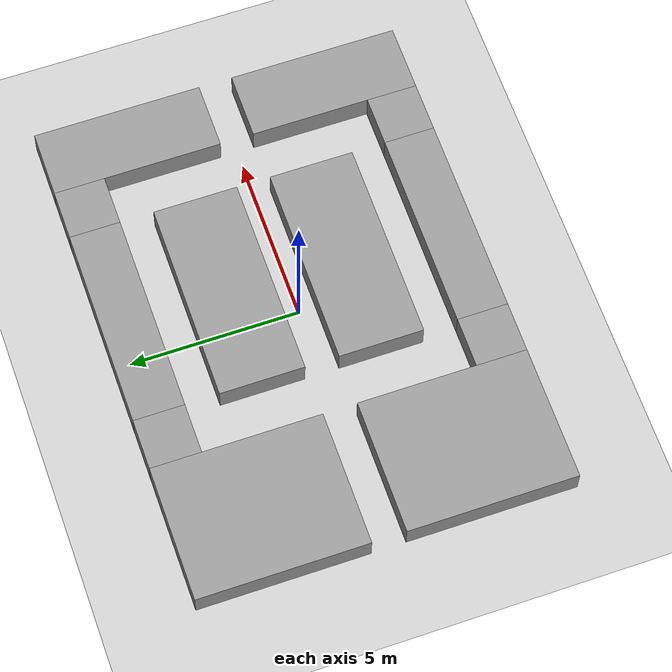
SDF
<sdf version="1.4">
  <world name="default">
    <include>
      <uri>model://sun</uri>
    </include>

    <include>
      <uri>model://ground_plane</uri>
    </include>

    <physics type="ode">
      <real_time_update_rate>1000.0</real_time_update_rate>
      <max_step_size>0.001</max_step_size>
      <real_time_factor>1</real_time_factor>
      <ode>
        <solver>
          <type>quick</type>
          <iters>150</iters>
          <precon_iters>0</precon_iters>
          <sor>1.400000</sor>
          <use_dynamic_moi_rescaling>1</use_dynamic_moi_rescaling>
        </solver>
        <constraints>
          <cfm>0.00001</cfm>
          <erp>0.2</erp>
          <contact_max_correcting_vel>2000.000000</contact_max_correcting_vel>
          <contact_surface_layer>0.01000</contact_surface_layer>
        </constraints>
      </ode>
    </physics>

    <model name="wall_0">
      <static>1</static>
      <pose>-5.500 3.000 0.40 0 0 0</pose>
      <link name="link">
        <collision name="collision">
          <geometry>
            <box>
              <size>4.000 5.000 0.8</size>
            </box>
          </geometry>
        </collision>
        <visual name="visual">
          <geometry>
            <box>
              <size>4.000 5.000 0.8</size>
            </box>
          </geometry>
          <material>
            <script>
              <uri>file://media/materials/scripts/gazebo.material</uri>
              <name>Gazebo/Grey</name>
            </script>
          </material>
        </visual>
      </link>
    </model>

    <model name="wall_1">
      <static>1</static>
      <pose>-5.500 -3.000 0.40 0 0 0</pose>
      <link name="link">
        <collision name="collision">
          <geometry>
            <box>
              <size>4.000 5.000 0.8</size>
            </box>
          </geometry>
        </collision>
        <visual name="visual">
          <geometry>
            <box>
              <size>4.000 5.000 0.8</size>
            </box>
          </geometry>
          <material>
            <script>
              <uri>file://media/materials/scripts/gazebo.material</uri>
              <name>Gazebo/Grey</name>
            </script>
          </material>
        </visual>
      </link>
    </model>

    <model name="wall_2">
      <static>1</static>
      <pose>-2.750 4.750 0.40 0 0 0</pose>
      <link name="link">
        <collision name="collision">
          <geometry>
            <box>
              <size>1.500 1.500 0.8</size>
            </box>
          </geometry>
        </collision>
        <visual name="visual">
          <geometry>
            <box>
              <size>1.500 1.500 0.8</size>
            </box>
          </geometry>
          <material>
            <script>
              <uri>file://media/materials/scripts/gazebo.material</uri>
              <name>Gazebo/Grey</name>
            </script>
          </material>
        </visual>
      </link>
    </model>

    <model name="wall_3">
      <static>1</static>
      <pose>-2.750 -4.750 0.40 0 0 0</pose>
      <link name="link">
        <collision name="collision">
          <geometry>
            <box>
              <size>1.500 1.500 0.8</size>
            </box>
          </geometry>
        </collision>
        <visual name="visual">
          <geometry>
            <box>
              <size>1.500 1.500 0.8</size>
            </box>
          </geometry>
          <material>
            <script>
              <uri>file://media/materials/scripts/gazebo.material</uri>
              <name>Gazebo/Grey</name>
            </script>
          </material>
        </visual>
      </link>
    </model>

    <model name="wall_4">
      <static>1</static>
      <pose>1.000 4.750 0.40 0 0 0</pose>
      <link name="link">
        <collision name="collision">
          <geometry>
            <box>
              <size>6.000 1.500 0.8</size>
            </box>
          </geometry>
        </collision>
        <visual name="visual">
          <geometry>
            <box>
              <size>6.000 1.500 0.8</size>
            </box>
          </geometry>
          <material>
            <script>
              <uri>file://media/materials/scripts/gazebo.material</uri>
              <name>Gazebo/Grey</name>
            </script>
          </material>
        </visual>
      </link>
    </model>

    <model name="wall_5">
      <static>1</static>
      <pose>1.000 1.750 0.40 0 0 0</pose>
      <link name="link">
        <collision name="collision">
          <geometry>
            <box>
              <size>6.000 2.500 0.8</size>
            </box>
          </geometry>
        </collision>
        <visual name="visual">
          <geometry>
            <box>
              <size>6.000 2.500 0.8</size>
            </box>
          </geometry>
          <material>
            <script>
              <uri>file://media/materials/scripts/gazebo.material</uri>
              <name>Gazebo/Grey</name>
            </script>
          </material>
        </visual>
      </link>
    </model>

    <model name="wall_6">
      <static>1</static>
      <pose>1.000 -1.750 0.40 0 0 0</pose>
      <link name="link">
        <collision name="collision">
          <geometry>
            <box>
              <size>6.000 2.500 0.8</size>
            </box>
          </geometry>
        </collision>
        <visual name="visual">
          <geometry>
            <box>
              <size>6.000 2.500 0.8</size>
            </box>
          </geometry>
          <material>
            <script>
              <uri>file://media/materials/scripts/gazebo.material</uri>
              <name>Gazebo/Grey</name>
            </script>
          </material>
        </visual>
      </link>
    </model>

    <model name="wall_7">
      <static>1</static>
      <pose>1.000 -4.750 0.40 0 0 0</pose>
      <link name="link">
        <collision name="collision">
          <geometry>
            <box>
              <size>6.000 1.500 0.8</size>
            </box>
          </geometry>
        </collision>
        <visual name="visual">
          <geometry>
            <box>
              <size>6.000 1.500 0.8</size>
            </box>
          </geometry>
          <material>
            <script>
              <uri>file://media/materials/scripts/gazebo.material</uri>
              <name>Gazebo/Grey</name>
            </script>
          </material>
        </visual>
      </link>
    </model>

    <model name="wall_8">
      <static>1</static>
      <pose>4.750 4.750 0.40 0 0 0</pose>
      <link name="link">
        <collision name="collision">
          <geometry>
            <box>
              <size>1.500 1.500 0.8</size>
            </box>
          </geometry>
        </collision>
        <visual name="visual">
          <geometry>
            <box>
              <size>1.500 1.500 0.8</size>
            </box>
          </geometry>
          <material>
            <script>
              <uri>file://media/materials/scripts/gazebo.material</uri>
              <name>Gazebo/Grey</name>
            </script>
          </material>
        </visual>
      </link>
    </model>

    <model name="wall_9">
      <static>1</static>
      <pose>4.750 -4.750 0.40 0 0 0</pose>
      <link name="link">
        <collision name="collision">
          <geometry>
            <box>
              <size>1.500 1.500 0.8</size>
            </box>
          </geometry>
        </collision>
        <visual name="visual">
          <geometry>
            <box>
              <size>1.500 1.500 0.8</size>
            </box>
          </geometry>
          <material>
            <script>
              <uri>file://media/materials/scripts/gazebo.material</uri>
              <name>Gazebo/Grey</name>
            </script>
          </material>
        </visual>
      </link>
    </model>

    <model name="wall_10">
      <static>1</static>
      <pose>6.500 3.000 0.40 0 0 0</pose>
      <link name="link">
        <collision name="collision">
          <geometry>
            <box>
              <size>2.000 5.000 0.8</size>
            </box>
          </geometry>
        </collision>
        <visual name="visual">
          <geometry>
            <box>
              <size>2.000 5.000 0.8</size>
            </box>
          </geometry>
          <material>
            <script>
              <uri>file://media/materials/scripts/gazebo.material</uri>
              <name>Gazebo/Grey</name>
            </script>
          </material>
        </visual>
      </link>
    </model>

    <model name="wall_11">
      <static>1</static>
      <pose>6.500 -3.000 0.40 0 0 0</pose>
      <link name="link">
        <collision name="collision">
          <geometry>
            <box>
              <size>2.000 5.000 0.8</size>
            </box>
          </geometry>
        </collision>
        <visual name="visual">
          <geometry>
            <box>
              <size>2.000 5.000 0.8</size>
            </box>
          </geometry>
          <material>
            <script>
              <uri>file://media/materials/scripts/gazebo.material</uri>
              <name>Gazebo/Grey</name>
            </script>
          </material>
        </visual>
      </link>
    </model>

  </world>
</sdf>
